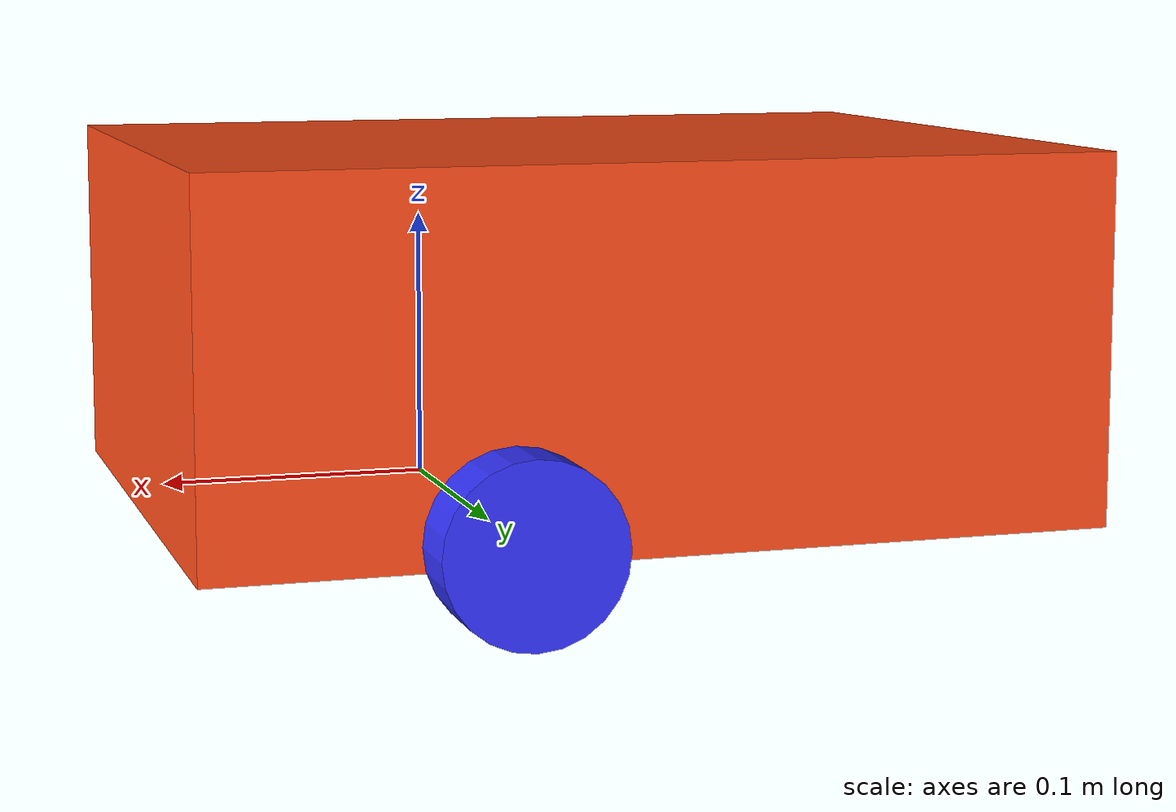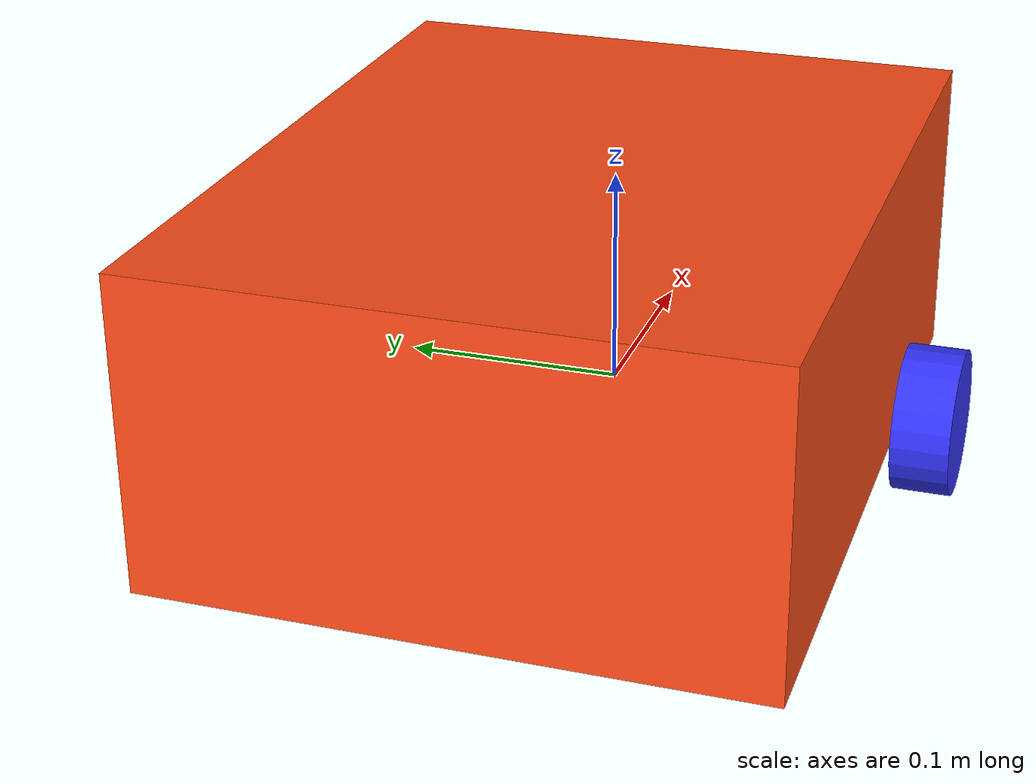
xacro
<?xml version="1.0"?>
<robot xmlns:xacro="http://www.ros.org/wiki/xacro" >

    <xacro:include filename="inertial_macros.xacro"/>

    <xacro:property name="chassis_length" value="0.335"/>
    <xacro:property name="chassis_width" value="0.265"/>
    <xacro:property name="chassis_height" value="0.138"/>
    <xacro:property name="chassis_mass" value="1.0"/>
    <xacro:property name="wheel_radius" value="0.033"/>
    <xacro:property name="wheel_thickness" value="0.026"/>
    <xacro:property name="wheel_mass" value="0.05"/>
    <xacro:property name="wheel_offset_x" value="0.226"/>
    <xacro:property name="wheel_offset_y" value="0.1485"/>
    <xacro:property name="wheel_offset_z" value="0.01"/>
    <xacro:property name="caster_wheel_radius" value="0.01"/>
    <xacro:property name="caster_wheel_mass" value="0.01"/>
    <xacro:property name="caster_wheel_offset_x" value="0.075"/>
    <xacro:property name="caster_wheel_offset_z" value="${wheel_offset_z - wheel_radius + caster_wheel_radius}"/>

    <material name="white">
        <color rgba="1 1 1 1" />
    </material>

    <material name="orange">
        <color rgba="1 0.3 0.1 1"/>
    </material>

    <material name="blue">
        <color rgba="0.2 0.2 1 1"/>
    </material>

    <material name="black">
        <color rgba="0 0 0 1"/>
    </material>

    <material name="red">
        <color rgba="1 0 0 1"/>
    </material>

    <!-- BASE LINK -->

    <link name="base_link">

    </link>

    <!-- BASE_FOOTPRINT LINK -->

    <joint name="base_footprint_joint" type="fixed">
        <parent link="base_link"/>
        <child link="base_footprint"/>
        <origin xyz="0 0 0" rpy="0 0 0"/>
    </joint>

    <link name="base_footprint">
    </link>

    <!-- CHASSIS LINK -->

    <joint name="chassis_joint" type="fixed">
        <parent link="base_link"/>
        <child link="chassis"/>
        <origin xyz="${-wheel_offset_x} 0 ${-wheel_offset_z}"/>
    </joint>

    <link name="chassis">
        <visual>
            <origin xyz="${chassis_length/2} 0 ${chassis_height/2}"/>
            <geometry>
                <box size="${chassis_length} ${chassis_width} ${chassis_height}"/>
            </geometry>
            <material name="orange"/>
        </visual>
        <collision>
            <origin xyz="${chassis_length/2} 0 ${chassis_height/2}"/>
            <geometry>
                <box size="${chassis_length} ${chassis_width} ${chassis_height}"/>
            </geometry>
        </collision>
        <xacro:inertial_box mass="0.5" x="${chassis_length}" y="${chassis_width}" z="${chassis_height}">
            <origin xyz="${chassis_length/2} 0 ${chassis_height/2}" rpy="0 0 0"/>
        </xacro:inertial_box>
    </link>

    <gazebo reference="chassis">
        <material>Gazebo/Orange</material>
    </gazebo>

    <!-- LEFT WHEEL LINK -->

    <joint name="left_wheel_joint" type="continuous">
        <parent link="base_link"/>
        <child link="left_wheel"/>
        <origin xyz="0 ${wheel_offset_y} 0" rpy="-${pi/2} 0 0" />
        <axis xyz="0 0 1"/>
    </joint>

    <link name="left_wheel">
        <visual>
            <geometry>
                <cylinder radius="${wheel_radius}" length="${wheel_thickness}"/>
            </geometry>
            <material name="blue"/>
        </visual>
        <collision>
            <geometry>
                <sphere radius="${wheel_radius}"/>
            </geometry>
        </collision>
        <xacro:inertial_cylinder mass="${wheel_mass}" length="${wheel_thickness}" radius="${wheel_radius}">
            <origin xyz="0 0 0" rpy="0 0 0"/>
        </xacro:inertial_cylinder>
    </link>

    <gazebo reference="left_wheel">
        <material>Gazebo/Blue</material>
    </gazebo>

    <!-- RIGHT WHEEL LINK -->

    <joint name="right_wheel_joint" type="continuous">
        <parent link="base_link"/>
        <child link="right_wheel"/>
        <origin xyz="0 ${-wheel_offset_y} 0" rpy="${pi/2} 0 0" />
        <axis xyz="0 0 -1"/>
    </joint>

    <link name="right_wheel">
        <visual>
            <geometry>
                <cylinder radius="${wheel_radius}" length="${wheel_thickness}"/>
            </geometry>
            <material name="blue"/>
        </visual>
        <collision>
            <geometry>
                <sphere radius="${wheel_radius}"/>
            </geometry>
        </collision>
        <xacro:inertial_cylinder mass="${wheel_mass}" length="${wheel_thickness}" radius="${wheel_radius}">
            <origin xyz="0 0 0" rpy="0 0 0"/>
        </xacro:inertial_cylinder>
    </link>

    <gazebo reference="right_wheel">
        <material>Gazebo/Blue</material>
    </gazebo>

    <!-- CASTER WHEEL LINK -->

    <joint name="caster_wheel_joint" type="fixed">
        <parent link="chassis"/>
        <child link="caster_wheel"/>
        <origin xyz="${caster_wheel_offset_x} 0 ${caster_wheel_offset_z}"/>
    </joint>

    <link name="caster_wheel">
        <visual>
            <geometry>
                <sphere radius="${caster_wheel_radius}"/>
            </geometry>
            <material name="white"/>
        </visual>
        <collision>
            <geometry>
                <sphere radius="${caster_wheel_radius}"/>
            </geometry>
        </collision>
        <xacro:inertial_sphere mass="${caster_wheel_mass}" radius="${caster_wheel_radius}">
            <origin xyz="0 0 0" rpy="0 0 0"/>
        </xacro:inertial_sphere>
    </link>

    <gazebo reference="caster_wheel">
        <material>Gazebo/White</material>
        <mu1 value="0.001"/>
        <mu2 value="0.001"/>
    </gazebo>

<!-- IMU LINK -->

    <joint name="imu_joint" type="fixed">
        <parent link="base_link"/>
        <child link="imu_link"/>
        <origin xyz="0 0 0.01" rpy="0 0 0"/>
    </joint>

    <link name="imu_link">
        <visual>
            <geometry>
                <box size="0.01 0.01 0.01"/>
            </geometry>
            <material name="black"/>
        </visual>
    </link>

    <gazebo reference="imu_link">
        <sensor name="imu_sensor" type="imu">
            <always_on>true</always_on>
            <update_rate>100</update_rate>
            <imu>
                <angular_velocity>
                    <x><noise type="gaussian"><mean>0.0</mean><stddev>2e-4</stddev></noise></x>
                    <y><noise type="gaussian"><mean>0.0</mean><stddev>2e-4</stddev></noise></y>
                    <z><noise type="gaussian"><mean>0.0</mean><stddev>2e-4</stddev></noise></z>
                </angular_velocity>
                <linear_acceleration>
                    <x><noise type="gaussian"><mean>0.0</mean><stddev>1.7e-2</stddev></noise></x>
                    <y><noise type="gaussian"><mean>0.0</mean><stddev>1.7e-2</stddev></noise></y>
                    <z><noise type="gaussian"><mean>0.0</mean><stddev>1.7e-2</stddev></noise></z>
                </linear_acceleration>
            </imu>
            <plugin name="imu_plugin" filename="libgazebo_ros_imu_sensor.so">
                <ros>
                    <remapping>~/out:=imu/out</remapping>
                </ros>
                <initial_orientation_as_reference>false</initial_orientation_as_reference>
            </plugin>
        </sensor>
    </gazebo>

</robot>
